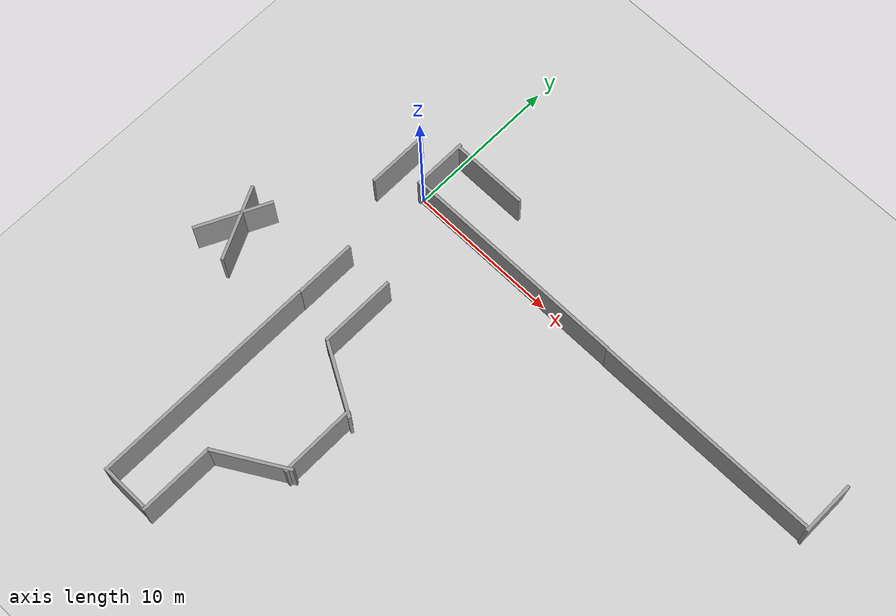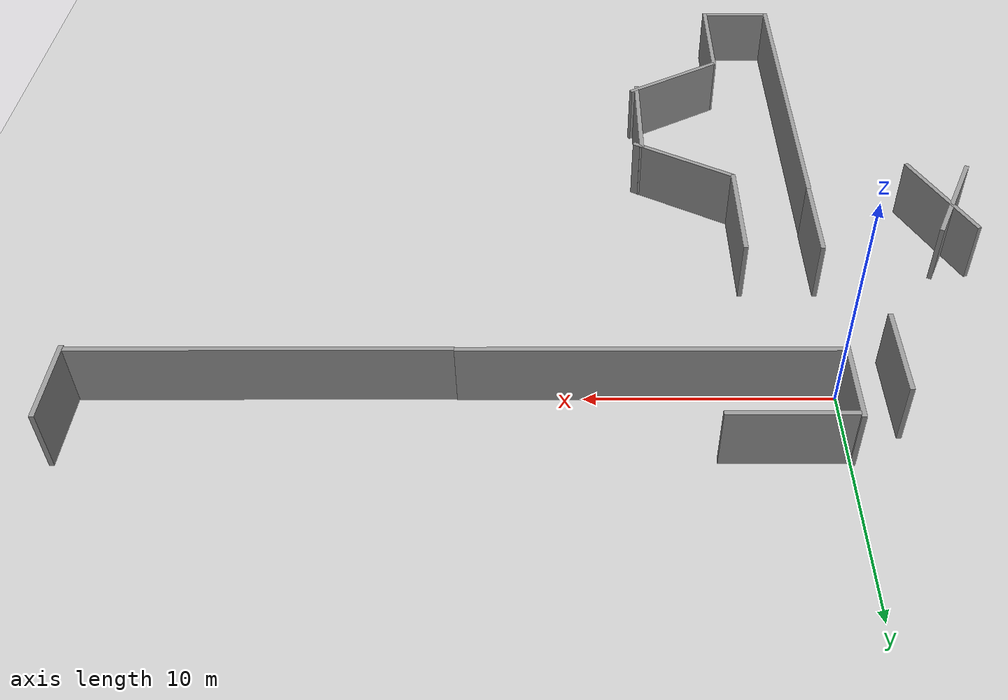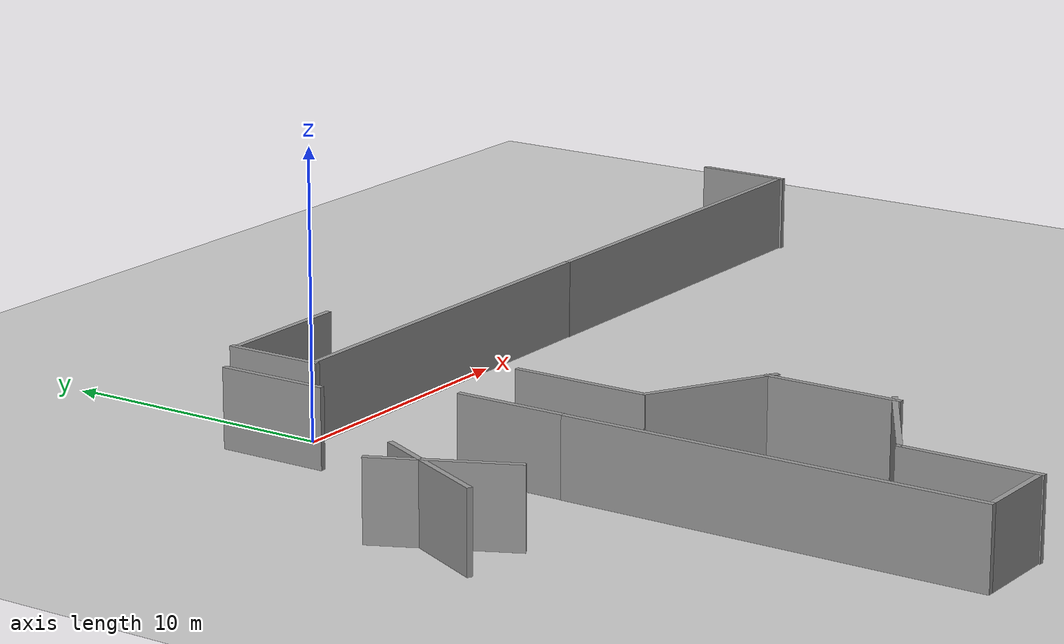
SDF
<sdf version="1.7">
 <world name="default">
  <model name="ground_plane">
   <static>1</static>
   <link name="link">
    <collision name="collision">
     <geometry><plane><normal>0 0 1</normal><size>100 100</size></plane></geometry>
     <surface>
      <contact><collide_bitmask>65535</collide_bitmask></contact>
      <friction><ode><mu>100</mu><mu2>50</mu2></ode></friction>
     </surface>
    </collision>
    <visual name="visual">
     <cast_shadows>0</cast_shadows>
     <geometry><plane><normal>0 0 1</normal><size>100 100</size></plane></geometry>
     <material>
      <script><uri>file://media/materials/scripts/gazebo.material</uri><name>Gazebo/Grey</name></script>
     </material>
    </visual>
   </link>
  </model>
  <model name="grey_wall_15_clone_0_clone">
   <link name="link">
    <pose>0 0 1.4 0 -0 0</pose>
    <inertial>
     <mass>1</mass>
     <inertia><ixx>1</ixx><ixy>0</ixy><ixz>0</ixz><iyy>1</iyy><iyz>0</iyz><izz>1</izz></inertia>
    </inertial>
    <visual name="visual">
     <cast_shadows>0</cast_shadows>
     <geometry><box><size>15 0.2 2.8</size></box></geometry>
     <material>
      <script>
       <uri>model://grey_wall/materials/scripts</uri>
       <uri>model://grey_wall/materials/textures</uri>
       <name>vrc/grey_wall</name>
      </script>
      <shader type="pixel"><normal_map>__default__</normal_map></shader>
      <ambient>1 1 1 1</ambient>
      <diffuse>1 1 1 1</diffuse>
      <specular>0 0 0 1</specular>
      <emissive>0 0 0 1</emissive>
     </material>
    </visual>
    <collision name="collision">
     <geometry><box><size>15 0.2 2.8</size></box></geometry>
     <surface>
      <friction>
       <ode><mu>1</mu><mu2>1</mu2><fdir1>0 0 0</fdir1><slip1>0</slip1><slip2>0</slip2></ode>
       <torsional>
        <coefficient>1</coefficient>
        <patch_radius>0</patch_radius>
        <surface_radius>0</surface_radius>
        <use_patch_radius>1</use_patch_radius>
        <ode><slip>0</slip></ode>
       </torsional>
      </friction>
      <bounce><restitution_coefficient>0</restitution_coefficient><threshold>1e+06</threshold></bounce>
      <contact>
       <collide_without_contact>0</collide_without_contact>
       <collide_without_contact_bitmask>1</collide_without_contact_bitmask>
       <collide_bitmask>1</collide_bitmask>
       <ode>
        <soft_cfm>0</soft_cfm>
        <soft_erp>0.2</soft_erp>
        <kp>1e+13</kp>
        <kd>1</kd>
        <max_vel>0.01</max_vel>
        <min_depth>0</min_depth>
       </ode>
       <bullet>
        <split_impulse>1</split_impulse>
        <split_impulse_penetration_threshold>-0.01</split_impulse_penetration_threshold>
        <soft_cfm>0</soft_cfm>
        <soft_erp>0.2</soft_erp>
        <kp>1e+13</kp>
        <kd>1</kd>
       </bullet>
      </contact>
     </surface>
    </collision>
   </link>
   <static>1</static>
   <pose>-0.125573 -17.4419 0 0 -0 1.57141</pose>
  </model>
  <model name="grey_wall_5_clone_0">
   <link name="link">
    <pose>0 0 1.4 0 -0 0</pose>
    <inertial>
     <mass>1</mass>
     <inertia><ixx>1</ixx><ixy>0</ixy><ixz>0</ixz><iyy>1</iyy><iyz>0</iyz><izz>1</izz></inertia>
    </inertial>
    <visual name="visual">
     <cast_shadows>0</cast_shadows>
     <geometry><box><size>5 0.2 2.8</size></box></geometry>
     <material>
      <script>
       <uri>model://grey_wall/materials/scripts</uri>
       <uri>model://grey_wall/materials/textures</uri>
       <name>vrc/grey_wall</name>
      </script>
      <shader type="pixel"><normal_map>__default__</normal_map></shader>
      <ambient>1 1 1 1</ambient>
      <diffuse>1 1 1 1</diffuse>
      <specular>0 0 0 1</specular>
      <emissive>0 0 0 1</emissive>
     </material>
    </visual>
    <collision name="collision">
     <geometry><box><size>5 0.2 2.8</size></box></geometry>
     <surface>
      <friction>
       <ode><mu>1</mu><mu2>1</mu2><fdir1>0 0 0</fdir1><slip1>0</slip1><slip2>0</slip2></ode>
       <torsional>
        <coefficient>1</coefficient>
        <patch_radius>0</patch_radius>
        <surface_radius>0</surface_radius>
        <use_patch_radius>1</use_patch_radius>
        <ode><slip>0</slip></ode>
       </torsional>
      </friction>
      <bounce><restitution_coefficient>0</restitution_coefficient><threshold>1e+06</threshold></bounce>
      <contact>
       <collide_without_contact>0</collide_without_contact>
       <collide_without_contact_bitmask>1</collide_without_contact_bitmask>
       <collide_bitmask>1</collide_bitmask>
       <ode>
        <soft_cfm>0</soft_cfm>
        <soft_erp>0.2</soft_erp>
        <kp>1e+13</kp>
        <kd>1</kd>
        <max_vel>0.01</max_vel>
        <min_depth>0</min_depth>
       </ode>
       <bullet>
        <split_impulse>1</split_impulse>
        <split_impulse_penetration_threshold>-0.01</split_impulse_penetration_threshold>
        <soft_cfm>0</soft_cfm>
        <soft_erp>0.2</soft_erp>
        <kp>1e+13</kp>
        <kd>1</kd>
       </bullet>
      </contact>
     </surface>
    </collision>
   </link>
   <static>1</static>
   <pose>5.22518 -18.851 0 0 -0 0.529284</pose>
  </model>
  <model name="grey_wall_5_clone_1">
   <link name="link">
    <pose>0 0 1.4 0 -0 0</pose>
    <inertial>
     <mass>1</mass>
     <inertia><ixx>1</ixx><ixy>0</ixy><ixz>0</ixz><iyy>1</iyy><iyz>0</iyz><izz>1</izz></inertia>
    </inertial>
    <visual name="visual">
     <cast_shadows>0</cast_shadows>
     <geometry><box><size>5 0.2 2.8</size></box></geometry>
     <material>
      <script>
       <uri>model://grey_wall/materials/scripts</uri>
       <uri>model://grey_wall/materials/textures</uri>
       <name>vrc/grey_wall</name>
      </script>
      <shader type="pixel"><normal_map>__default__</normal_map></shader>
      <ambient>1 1 1 1</ambient>
      <diffuse>1 1 1 1</diffuse>
      <specular>0 0 0 1</specular>
      <emissive>0 0 0 1</emissive>
     </material>
    </visual>
    <collision name="collision">
     <geometry><box><size>5 0.2 2.8</size></box></geometry>
     <surface>
      <friction>
       <ode><mu>1</mu><mu2>1</mu2><fdir1>0 0 0</fdir1><slip1>0</slip1><slip2>0</slip2></ode>
       <torsional>
        <coefficient>1</coefficient>
        <patch_radius>0</patch_radius>
        <surface_radius>0</surface_radius>
        <use_patch_radius>1</use_patch_radius>
        <ode><slip>0</slip></ode>
       </torsional>
      </friction>
      <bounce><restitution_coefficient>0</restitution_coefficient><threshold>1e+06</threshold></bounce>
      <contact>
       <collide_without_contact>0</collide_without_contact>
       <collide_without_contact_bitmask>1</collide_without_contact_bitmask>
       <collide_bitmask>1</collide_bitmask>
       <ode>
        <soft_cfm>0</soft_cfm>
        <soft_erp>0.2</soft_erp>
        <kp>1e+13</kp>
        <kd>1</kd>
        <max_vel>0.01</max_vel>
        <min_depth>0</min_depth>
       </ode>
       <bullet>
        <split_impulse>1</split_impulse>
        <split_impulse_penetration_threshold>-0.01</split_impulse_penetration_threshold>
        <soft_cfm>0</soft_cfm>
        <soft_erp>0.2</soft_erp>
        <kp>1e+13</kp>
        <kd>1</kd>
       </bullet>
      </contact>
     </surface>
    </collision>
   </link>
   <static>1</static>
   <pose>5.2624 -12.089 0 0 0 -0.50895</pose>
  </model>
  <model name="grey_wall_5_clone_clone_0_clone">
   <link name="link">
    <pose>0 0 1.4 0 -0 0</pose>
    <inertial>
     <mass>1</mass>
     <inertia><ixx>1</ixx><ixy>0</ixy><ixz>0</ixz><iyy>1</iyy><iyz>0</iyz><izz>1</izz></inertia>
    </inertial>
    <visual name="visual">
     <cast_shadows>0</cast_shadows>
     <geometry><box><size>5 0.2 2.8</size></box></geometry>
     <material>
      <script>
       <uri>model://grey_wall/materials/scripts</uri>
       <uri>model://grey_wall/materials/textures</uri>
       <name>vrc/grey_wall</name>
      </script>
      <shader type="pixel"><normal_map>__default__</normal_map></shader>
      <ambient>1 1 1 1</ambient>
      <diffuse>1 1 1 1</diffuse>
      <specular>0 0 0 1</specular>
      <emissive>0 0 0 1</emissive>
     </material>
    </visual>
    <collision name="collision">
     <geometry><box><size>5 0.2 2.8</size></box></geometry>
     <surface>
      <friction>
       <ode><mu>1</mu><mu2>1</mu2><fdir1>0 0 0</fdir1><slip1>0</slip1><slip2>0</slip2></ode>
       <torsional>
        <coefficient>1</coefficient>
        <patch_radius>0</patch_radius>
        <surface_radius>0</surface_radius>
        <use_patch_radius>1</use_patch_radius>
        <ode><slip>0</slip></ode>
       </torsional>
      </friction>
      <bounce><restitution_coefficient>0</restitution_coefficient><threshold>1e+06</threshold></bounce>
      <contact>
       <collide_without_contact>0</collide_without_contact>
       <collide_without_contact_bitmask>1</collide_without_contact_bitmask>
       <collide_bitmask>1</collide_bitmask>
       <ode>
        <soft_cfm>0</soft_cfm>
        <soft_erp>0.2</soft_erp>
        <kp>1e+13</kp>
        <kd>1</kd>
        <max_vel>0.01</max_vel>
        <min_depth>0</min_depth>
       </ode>
       <bullet>
        <split_impulse>1</split_impulse>
        <split_impulse_penetration_threshold>-0.01</split_impulse_penetration_threshold>
        <soft_cfm>0</soft_cfm>
        <soft_erp>0.2</soft_erp>
        <kp>1e+13</kp>
        <kd>1</kd>
       </bullet>
      </contact>
     </surface>
    </collision>
   </link>
   <static>1</static>
   <pose>3.0847 -22.4947 0 0 -0 1.57141</pose>
  </model>
  <model name="grey_wall_5_clone_clone_0_clone_0">
   <link name="link">
    <pose>0 0 1.4 0 -0 0</pose>
    <inertial>
     <mass>1</mass>
     <inertia><ixx>1</ixx><ixy>0</ixy><ixz>0</ixz><iyy>1</iyy><iyz>0</iyz><izz>1</izz></inertia>
    </inertial>
    <visual name="visual">
     <cast_shadows>0</cast_shadows>
     <geometry><box><size>5 0.2 2.8</size></box></geometry>
     <material>
      <script>
       <uri>model://grey_wall/materials/scripts</uri>
       <uri>model://grey_wall/materials/textures</uri>
       <name>vrc/grey_wall</name>
      </script>
      <shader type="pixel"><normal_map>__default__</normal_map></shader>
      <ambient>1 1 1 1</ambient>
      <diffuse>1 1 1 1</diffuse>
      <specular>0 0 0 1</specular>
      <emissive>0 0 0 1</emissive>
     </material>
    </visual>
    <collision name="collision">
     <geometry><box><size>5 0.2 2.8</size></box></geometry>
     <surface>
      <friction>
       <ode><mu>1</mu><mu2>1</mu2><fdir1>0 0 0</fdir1><slip1>0</slip1><slip2>0</slip2></ode>
       <torsional>
        <coefficient>1</coefficient>
        <patch_radius>0</patch_radius>
        <surface_radius>0</surface_radius>
        <use_patch_radius>1</use_patch_radius>
        <ode><slip>0</slip></ode>
       </torsional>
      </friction>
      <bounce><restitution_coefficient>0</restitution_coefficient><threshold>1e+06</threshold></bounce>
      <contact>
       <collide_without_contact>0</collide_without_contact>
       <collide_without_contact_bitmask>1</collide_without_contact_bitmask>
       <collide_bitmask>1</collide_bitmask>
       <ode>
        <soft_cfm>0</soft_cfm>
        <soft_erp>0.2</soft_erp>
        <kp>1e+13</kp>
        <kd>1</kd>
        <max_vel>0.01</max_vel>
        <min_depth>0</min_depth>
       </ode>
       <bullet>
        <split_impulse>1</split_impulse>
        <split_impulse_penetration_threshold>-0.01</split_impulse_penetration_threshold>
        <soft_cfm>0</soft_cfm>
        <soft_erp>0.2</soft_erp>
        <kp>1e+13</kp>
        <kd>1</kd>
       </bullet>
      </contact>
     </surface>
    </collision>
   </link>
   <static>1</static>
   <pose>7.0941 -15.5005 0 0 -0 1.57141</pose>
  </model>
  <model name="grey_wall_5_clone_clone_0_clone_1">
   <link name="link">
    <pose>0 0 1.4 0 -0 0</pose>
    <inertial>
     <mass>1</mass>
     <inertia><ixx>1</ixx><ixy>0</ixy><ixz>0</ixz><iyy>1</iyy><iyz>0</iyz><izz>1</izz></inertia>
    </inertial>
    <visual name="visual">
     <cast_shadows>0</cast_shadows>
     <geometry><box><size>5 0.2 2.8</size></box></geometry>
     <material>
      <script>
       <uri>model://grey_wall/materials/scripts</uri>
       <uri>model://grey_wall/materials/textures</uri>
       <name>vrc/grey_wall</name>
      </script>
      <shader type="pixel"><normal_map>__default__</normal_map></shader>
      <ambient>1 1 1 1</ambient>
      <diffuse>1 1 1 1</diffuse>
      <specular>0 0 0 1</specular>
      <emissive>0 0 0 1</emissive>
     </material>
    </visual>
    <collision name="collision">
     <geometry><box><size>5 0.2 2.8</size></box></geometry>
     <surface>
      <friction>
       <ode><mu>1</mu><mu2>1</mu2><fdir1>0 0 0</fdir1><slip1>0</slip1><slip2>0</slip2></ode>
       <torsional>
        <coefficient>1</coefficient>
        <patch_radius>0</patch_radius>
        <surface_radius>0</surface_radius>
        <use_patch_radius>1</use_patch_radius>
        <ode><slip>0</slip></ode>
       </torsional>
      </friction>
      <bounce><restitution_coefficient>0</restitution_coefficient><threshold>1e+06</threshold></bounce>
      <contact>
       <collide_without_contact>0</collide_without_contact>
       <collide_without_contact_bitmask>1</collide_without_contact_bitmask>
       <collide_bitmask>1</collide_bitmask>
       <ode>
        <soft_cfm>0</soft_cfm>
        <soft_erp>0.2</soft_erp>
        <kp>1e+13</kp>
        <kd>1</kd>
        <max_vel>0.01</max_vel>
        <min_depth>0</min_depth>
       </ode>
       <bullet>
        <split_impulse>1</split_impulse>
        <split_impulse_penetration_threshold>-0.01</split_impulse_penetration_threshold>
        <soft_cfm>0</soft_cfm>
        <soft_erp>0.2</soft_erp>
        <kp>1e+13</kp>
        <kd>1</kd>
       </bullet>
      </contact>
     </surface>
    </collision>
   </link>
   <static>1</static>
   <pose>3.11887 -8.47787 0 0 -0 1.57141</pose>
  </model>
  <model name="grey_wall_5_clone_clone_0_clone_1_clone">
   <link name="link">
    <pose>0 0 1.4 0 -0 0</pose>
    <inertial>
     <mass>1</mass>
     <inertia><ixx>1</ixx><ixy>0</ixy><ixz>0</ixz><iyy>1</iyy><iyz>0</iyz><izz>1</izz></inertia>
    </inertial>
    <visual name="visual">
     <cast_shadows>0</cast_shadows>
     <geometry><box><size>5 0.2 2.8</size></box></geometry>
     <material>
      <script>
       <uri>model://grey_wall/materials/scripts</uri>
       <uri>model://grey_wall/materials/textures</uri>
       <name>vrc/grey_wall</name>
      </script>
      <shader type="pixel"><normal_map>__default__</normal_map></shader>
      <ambient>1 1 1 1</ambient>
      <diffuse>1 1 1 1</diffuse>
      <specular>0 0 0 1</specular>
      <emissive>0 0 0 1</emissive>
     </material>
    </visual>
    <collision name="collision">
     <geometry><box><size>5 0.2 2.8</size></box></geometry>
     <surface>
      <friction>
       <ode><mu>1</mu><mu2>1</mu2><fdir1>0 0 0</fdir1><slip1>0</slip1><slip2>0</slip2></ode>
       <torsional>
        <coefficient>1</coefficient>
        <patch_radius>0</patch_radius>
        <surface_radius>0</surface_radius>
        <use_patch_radius>1</use_patch_radius>
        <ode><slip>0</slip></ode>
       </torsional>
      </friction>
      <bounce><restitution_coefficient>0</restitution_coefficient><threshold>1e+06</threshold></bounce>
      <contact>
       <collide_without_contact>0</collide_without_contact>
       <collide_without_contact_bitmask>1</collide_without_contact_bitmask>
       <collide_bitmask>1</collide_bitmask>
       <ode>
        <soft_cfm>0</soft_cfm>
        <soft_erp>0.2</soft_erp>
        <kp>1e+13</kp>
        <kd>1</kd>
        <max_vel>0.01</max_vel>
        <min_depth>0</min_depth>
       </ode>
       <bullet>
        <split_impulse>1</split_impulse>
        <split_impulse_penetration_threshold>-0.01</split_impulse_penetration_threshold>
        <soft_cfm>0</soft_cfm>
        <soft_erp>0.2</soft_erp>
        <kp>1e+13</kp>
        <kd>1</kd>
       </bullet>
      </contact>
     </surface>
    </collision>
   </link>
   <static>1</static>
   <pose>-6.45443 -9.34821 0 0 -0 1.11893</pose>
  </model>
  <model name="grey_wall_5_clone_clone_0_clone_1_clone_clone">
   <link name="link">
    <pose>0 0 1.4 0 -0 0</pose>
    <inertial>
     <mass>1</mass>
     <inertia><ixx>1</ixx><ixy>0</ixy><ixz>0</ixz><iyy>1</iyy><iyz>0</iyz><izz>1</izz></inertia>
    </inertial>
    <visual name="visual">
     <cast_shadows>0</cast_shadows>
     <geometry><box><size>5 0.2 2.8</size></box></geometry>
     <material>
      <script>
       <uri>model://grey_wall/materials/scripts</uri>
       <uri>model://grey_wall/materials/textures</uri>
       <name>vrc/grey_wall</name>
      </script>
      <shader type="pixel"><normal_map>__default__</normal_map></shader>
      <ambient>1 1 1 1</ambient>
      <diffuse>1 1 1 1</diffuse>
      <specular>0 0 0 1</specular>
      <emissive>0 0 0 1</emissive>
     </material>
    </visual>
    <collision name="collision">
     <geometry><box><size>5 0.2 2.8</size></box></geometry>
     <surface>
      <friction>
       <ode><mu>1</mu><mu2>1</mu2><fdir1>0 0 0</fdir1><slip1>0</slip1><slip2>0</slip2></ode>
       <torsional>
        <coefficient>1</coefficient>
        <patch_radius>0</patch_radius>
        <surface_radius>0</surface_radius>
        <use_patch_radius>1</use_patch_radius>
        <ode><slip>0</slip></ode>
       </torsional>
      </friction>
      <bounce><restitution_coefficient>0</restitution_coefficient><threshold>1e+06</threshold></bounce>
      <contact>
       <collide_without_contact>0</collide_without_contact>
       <collide_without_contact_bitmask>1</collide_without_contact_bitmask>
       <collide_bitmask>1</collide_bitmask>
       <ode>
        <soft_cfm>0</soft_cfm>
        <soft_erp>0.2</soft_erp>
        <kp>1e+13</kp>
        <kd>1</kd>
        <max_vel>0.01</max_vel>
        <min_depth>0</min_depth>
       </ode>
       <bullet>
        <split_impulse>1</split_impulse>
        <split_impulse_penetration_threshold>-0.01</split_impulse_penetration_threshold>
        <soft_cfm>0</soft_cfm>
        <soft_erp>0.2</soft_erp>
        <kp>1e+13</kp>
        <kd>1</kd>
       </bullet>
      </contact>
     </surface>
    </collision>
   </link>
   <static>1</static>
   <pose>-5.9078 -9.50249 0 0 -0 2.02194</pose>
  </model>
  <model name="grey_wall_4_clone_0_clone_clone_0_clone_clone_clone_1_clone">
   <link name="link">
    <pose>0 0 1.4 0 -0 0</pose>
    <inertial>
     <mass>1</mass>
     <inertia><ixx>1</ixx><ixy>0</ixy><ixz>0</ixz><iyy>1</iyy><iyz>0</iyz><izz>1</izz></inertia>
    </inertial>
    <visual name="visual">
     <cast_shadows>0</cast_shadows>
     <geometry><box><size>4 0.2 2.8</size></box></geometry>
     <material>
      <script>
       <uri>model://grey_wall/materials/scripts</uri>
       <uri>model://grey_wall/materials/textures</uri>
       <name>vrc/grey_wall</name>
      </script>
      <shader type="pixel"><normal_map>__default__</normal_map></shader>
      <ambient>1 1 1 1</ambient>
      <diffuse>1 1 1 1</diffuse>
      <specular>0 0 0 1</specular>
      <emissive>0 0 0 1</emissive>
     </material>
    </visual>
    <collision name="collision">
     <geometry><box><size>4 0.2 2.8</size></box></geometry>
     <surface>
      <friction>
       <ode><mu>1</mu><mu2>1</mu2><fdir1>0 0 0</fdir1><slip1>0</slip1><slip2>0</slip2></ode>
       <torsional>
        <coefficient>1</coefficient>
        <patch_radius>0</patch_radius>
        <surface_radius>0</surface_radius>
        <use_patch_radius>1</use_patch_radius>
        <ode><slip>0</slip></ode>
       </torsional>
      </friction>
      <bounce><restitution_coefficient>0</restitution_coefficient><threshold>1e+06</threshold></bounce>
      <contact>
       <collide_without_contact>0</collide_without_contact>
       <collide_without_contact_bitmask>1</collide_without_contact_bitmask>
       <collide_bitmask>1</collide_bitmask>
       <ode>
        <soft_cfm>0</soft_cfm>
        <soft_erp>0.2</soft_erp>
        <kp>1e+13</kp>
        <kd>1</kd>
        <max_vel>0.01</max_vel>
        <min_depth>0</min_depth>
       </ode>
       <bullet>
        <split_impulse>1</split_impulse>
        <split_impulse_penetration_threshold>-0.01</split_impulse_penetration_threshold>
        <soft_cfm>0</soft_cfm>
        <soft_erp>0.2</soft_erp>
        <kp>1e+13</kp>
        <kd>1</kd>
       </bullet>
      </contact>
     </surface>
    </collision>
   </link>
   <static>1</static>
   <pose>-0.11243 -7.95236 0 0 -0 1.57141</pose>
  </model>
  <model name="grey_wall_4_clone_0_clone_clone_0_clone_clone_clone_0_clone">
   <link name="link">
    <pose>0 0 1.4 0 -0 0</pose>
    <inertial>
     <mass>1</mass>
     <inertia><ixx>1</ixx><ixy>0</ixy><ixz>0</ixz><iyy>1</iyy><iyz>0</iyz><izz>1</izz></inertia>
    </inertial>
    <visual name="visual">
     <cast_shadows>0</cast_shadows>
     <geometry><box><size>4 0.2 2.8</size></box></geometry>
     <material>
      <script>
       <uri>model://grey_wall/materials/scripts</uri>
       <uri>model://grey_wall/materials/textures</uri>
       <name>vrc/grey_wall</name>
      </script>
      <shader type="pixel"><normal_map>__default__</normal_map></shader>
      <ambient>1 1 1 1</ambient>
      <diffuse>1 1 1 1</diffuse>
      <specular>0 0 0 1</specular>
      <emissive>0 0 0 1</emissive>
     </material>
    </visual>
    <collision name="collision">
     <geometry><box><size>4 0.2 2.8</size></box></geometry>
     <surface>
      <friction>
       <ode><mu>1</mu><mu2>1</mu2><fdir1>0 0 0</fdir1><slip1>0</slip1><slip2>0</slip2></ode>
       <torsional>
        <coefficient>1</coefficient>
        <patch_radius>0</patch_radius>
        <surface_radius>0</surface_radius>
        <use_patch_radius>1</use_patch_radius>
        <ode><slip>0</slip></ode>
       </torsional>
      </friction>
      <bounce><restitution_coefficient>0</restitution_coefficient><threshold>1e+06</threshold></bounce>
      <contact>
       <collide_without_contact>0</collide_without_contact>
       <collide_without_contact_bitmask>1</collide_without_contact_bitmask>
       <collide_bitmask>1</collide_bitmask>
       <ode>
        <soft_cfm>0</soft_cfm>
        <soft_erp>0.2</soft_erp>
        <kp>1e+13</kp>
        <kd>1</kd>
        <max_vel>0.01</max_vel>
        <min_depth>0</min_depth>
       </ode>
       <bullet>
        <split_impulse>1</split_impulse>
        <split_impulse_penetration_threshold>-0.01</split_impulse_penetration_threshold>
        <soft_cfm>0</soft_cfm>
        <soft_erp>0.2</soft_erp>
        <kp>1e+13</kp>
        <kd>1</kd>
       </bullet>
      </contact>
     </surface>
    </collision>
   </link>
   <static>1</static>
   <pose>-2.10783 -0.018559 0 0 -0 1.57141</pose>
  </model>
  <model name="grey_wall_3_clone_clone_clone">
   <link name="link">
    <pose>0 0 1.4 0 -0 0</pose>
    <inertial>
     <mass>1</mass>
     <inertia><ixx>1</ixx><ixy>0</ixy><ixz>0</ixz><iyy>1</iyy><iyz>0</iyz><izz>1</izz></inertia>
    </inertial>
    <visual name="visual">
     <cast_shadows>0</cast_shadows>
     <geometry><box><size>3 0.2 2.8</size></box></geometry>
     <material>
      <script>
       <uri>model://grey_wall/materials/scripts</uri>
       <uri>model://grey_wall/materials/textures</uri>
       <name>vrc/grey_wall</name>
      </script>
      <shader type="pixel"><normal_map>__default__</normal_map></shader>
      <ambient>1 1 1 1</ambient>
      <diffuse>1 1 1 1</diffuse>
      <specular>0 0 0 1</specular>
      <emissive>0 0 0 1</emissive>
     </material>
    </visual>
    <collision name="collision">
     <geometry><box><size>2.96 0.2 2.8</size></box></geometry>
     <surface>
      <friction>
       <ode><mu>1</mu><mu2>1</mu2><fdir1>0 0 0</fdir1><slip1>0</slip1><slip2>0</slip2></ode>
       <torsional>
        <coefficient>1</coefficient>
        <patch_radius>0</patch_radius>
        <surface_radius>0</surface_radius>
        <use_patch_radius>1</use_patch_radius>
        <ode><slip>0</slip></ode>
       </torsional>
      </friction>
      <bounce><restitution_coefficient>0</restitution_coefficient><threshold>1e+06</threshold></bounce>
      <contact>
       <collide_without_contact>0</collide_without_contact>
       <collide_without_contact_bitmask>1</collide_without_contact_bitmask>
       <collide_bitmask>1</collide_bitmask>
       <ode>
        <soft_cfm>0</soft_cfm>
        <soft_erp>0.2</soft_erp>
        <kp>1e+13</kp>
        <kd>1</kd>
        <max_vel>0.01</max_vel>
        <min_depth>0</min_depth>
       </ode>
       <bullet>
        <split_impulse>1</split_impulse>
        <split_impulse_penetration_threshold>-0.01</split_impulse_penetration_threshold>
        <soft_cfm>0</soft_cfm>
        <soft_erp>0.2</soft_erp>
        <kp>1e+13</kp>
        <kd>1</kd>
       </bullet>
      </contact>
     </surface>
    </collision>
   </link>
   <static>1</static>
   <pose>1.48162 -24.8436 0 0 -0 0</pose>
  </model>
  <model name="grey_wall_15_clone_0_clone_clone_clone">
   <link name="link">
    <pose>0 0 1.4 0 -0 0</pose>
    <inertial>
     <mass>1</mass>
     <inertia><ixx>1</ixx><ixy>0</ixy><ixz>0</ixz><iyy>1</iyy><iyz>0</iyz><izz>1</izz></inertia>
    </inertial>
    <visual name="visual">
     <cast_shadows>0</cast_shadows>
     <geometry><box><size>15 0.2 2.8</size></box></geometry>
     <material>
      <script>
       <uri>model://grey_wall/materials/scripts</uri>
       <uri>model://grey_wall/materials/textures</uri>
       <name>vrc/grey_wall</name>
      </script>
      <shader type="pixel"><normal_map>__default__</normal_map></shader>
      <ambient>1 1 1 1</ambient>
      <diffuse>1 1 1 1</diffuse>
      <specular>0 0 0 1</specular>
      <emissive>0 0 0 1</emissive>
     </material>
    </visual>
    <collision name="collision">
     <geometry><box><size>15 0.2 2.8</size></box></geometry>
     <surface>
      <friction>
       <ode><mu>1</mu><mu2>1</mu2><fdir1>0 0 0</fdir1><slip1>0</slip1><slip2>0</slip2></ode>
       <torsional>
        <coefficient>1</coefficient>
        <patch_radius>0</patch_radius>
        <surface_radius>0</surface_radius>
        <use_patch_radius>1</use_patch_radius>
        <ode><slip>0</slip></ode>
       </torsional>
      </friction>
      <bounce><restitution_coefficient>0</restitution_coefficient><threshold>1e+06</threshold></bounce>
      <contact>
       <collide_without_contact>0</collide_without_contact>
       <collide_without_contact_bitmask>1</collide_without_contact_bitmask>
       <collide_bitmask>1</collide_bitmask>
       <ode>
        <soft_cfm>0</soft_cfm>
        <soft_erp>0.2</soft_erp>
        <kp>1e+13</kp>
        <kd>1</kd>
        <max_vel>0.01</max_vel>
        <min_depth>0</min_depth>
       </ode>
       <bullet>
        <split_impulse>1</split_impulse>
        <split_impulse_penetration_threshold>-0.01</split_impulse_penetration_threshold>
        <soft_cfm>0</soft_cfm>
        <soft_erp>0.2</soft_erp>
        <kp>1e+13</kp>
        <kd>1</kd>
       </bullet>
      </contact>
     </surface>
    </collision>
   </link>
   <static>1</static>
   <pose>7.49836 -0.095524 0 0 -0 0.001488</pose>
  </model>
  <model name="grey_wall_15_clone_0_clone_clone_clone_0">
   <link name="link">
    <pose>0 0 1.4 0 -0 0</pose>
    <inertial>
     <mass>1</mass>
     <inertia><ixx>1</ixx><ixy>0</ixy><ixz>0</ixz><iyy>1</iyy><iyz>0</iyz><izz>1</izz></inertia>
    </inertial>
    <visual name="visual">
     <cast_shadows>0</cast_shadows>
     <geometry><box><size>15 0.2 2.8</size></box></geometry>
     <material>
      <script>
       <uri>model://grey_wall/materials/scripts</uri>
       <uri>model://grey_wall/materials/textures</uri>
       <name>vrc/grey_wall</name>
      </script>
      <shader type="pixel"><normal_map>__default__</normal_map></shader>
      <ambient>1 1 1 1</ambient>
      <diffuse>1 1 1 1</diffuse>
      <specular>0 0 0 1</specular>
      <emissive>0 0 0 1</emissive>
     </material>
    </visual>
    <collision name="collision">
     <geometry><box><size>15 0.2 2.8</size></box></geometry>
     <surface>
      <friction>
       <ode><mu>1</mu><mu2>1</mu2><fdir1>0 0 0</fdir1><slip1>0</slip1><slip2>0</slip2></ode>
       <torsional>
        <coefficient>1</coefficient>
        <patch_radius>0</patch_radius>
        <surface_radius>0</surface_radius>
        <use_patch_radius>1</use_patch_radius>
        <ode><slip>0</slip></ode>
       </torsional>
      </friction>
      <bounce><restitution_coefficient>0</restitution_coefficient><threshold>1e+06</threshold></bounce>
      <contact>
       <collide_without_contact>0</collide_without_contact>
       <collide_without_contact_bitmask>1</collide_without_contact_bitmask>
       <collide_bitmask>1</collide_bitmask>
       <ode>
        <soft_cfm>0</soft_cfm>
        <soft_erp>0.2</soft_erp>
        <kp>1e+13</kp>
        <kd>1</kd>
        <max_vel>0.01</max_vel>
        <min_depth>0</min_depth>
       </ode>
       <bullet>
        <split_impulse>1</split_impulse>
        <split_impulse_penetration_threshold>-0.01</split_impulse_penetration_threshold>
        <soft_cfm>0</soft_cfm>
        <soft_erp>0.2</soft_erp>
        <kp>1e+13</kp>
        <kd>1</kd>
       </bullet>
      </contact>
     </surface>
    </collision>
   </link>
   <static>1</static>
   <pose>22.4874 -0.099405 0 0 -0 0.001488</pose>
  </model>
  <model name="grey_wall_3.6_clone_0">
   <link name="link">
    <pose>0 0 1.4 0 -0 0</pose>
    <inertial>
     <mass>1</mass>
     <inertia><ixx>1</ixx><ixy>0</ixy><ixz>0</ixz><iyy>1</iyy><iyz>0</iyz><izz>1</izz></inertia>
    </inertial>
    <visual name="visual">
     <cast_shadows>0</cast_shadows>
     <geometry><box><size>3.6 0.2 2.8</size></box></geometry>
     <material>
      <script>
       <uri>model://grey_wall/materials/scripts</uri>
       <uri>model://grey_wall/materials/textures</uri>
       <name>vrc/grey_wall</name>
      </script>
      <shader type="pixel"><normal_map>__default__</normal_map></shader>
      <ambient>1 1 1 1</ambient>
      <diffuse>1 1 1 1</diffuse>
      <specular>0 0 0 1</specular>
      <emissive>0 0 0 1</emissive>
     </material>
    </visual>
    <collision name="collision">
     <geometry><box><size>3.6 0.2 2.8</size></box></geometry>
     <surface>
      <friction>
       <ode><mu>1</mu><mu2>1</mu2><fdir1>0 0 0</fdir1><slip1>0</slip1><slip2>0</slip2></ode>
       <torsional>
        <coefficient>1</coefficient>
        <patch_radius>0</patch_radius>
        <surface_radius>0</surface_radius>
        <use_patch_radius>1</use_patch_radius>
        <ode><slip>0</slip></ode>
       </torsional>
      </friction>
      <bounce><restitution_coefficient>0</restitution_coefficient><threshold>1e+06</threshold></bounce>
      <contact>
       <collide_without_contact>0</collide_without_contact>
       <collide_without_contact_bitmask>1</collide_without_contact_bitmask>
       <collide_bitmask>1</collide_bitmask>
       <ode>
        <soft_cfm>0</soft_cfm>
        <soft_erp>0.2</soft_erp>
        <kp>1e+13</kp>
        <kd>1</kd>
        <max_vel>0.01</max_vel>
        <min_depth>0</min_depth>
       </ode>
       <bullet>
        <split_impulse>1</split_impulse>
        <split_impulse_penetration_threshold>-0.01</split_impulse_penetration_threshold>
        <soft_cfm>0</soft_cfm>
        <soft_erp>0.2</soft_erp>
        <kp>1e+13</kp>
        <kd>1</kd>
       </bullet>
      </contact>
     </surface>
    </collision>
   </link>
   <static>1</static>
   <pose>-0.087094 1.50795 0 0 0 -1.57333</pose>
  </model>
  <model name="grey_wall_5_clone_2">
   <link name="link">
    <pose>0 0 1.4 0 -0 0</pose>
    <inertial>
     <mass>1</mass>
     <inertia><ixx>1</ixx><ixy>0</ixy><ixz>0</ixz><iyy>1</iyy><iyz>0</iyz><izz>1</izz></inertia>
    </inertial>
    <visual name="visual">
     <cast_shadows>0</cast_shadows>
     <geometry><box><size>5 0.2 2.8</size></box></geometry>
     <material>
      <script>
       <uri>model://grey_wall/materials/scripts</uri>
       <uri>model://grey_wall/materials/textures</uri>
       <name>vrc/grey_wall</name>
      </script>
      <shader type="pixel"><normal_map>__default__</normal_map></shader>
      <ambient>1 1 1 1</ambient>
      <diffuse>1 1 1 1</diffuse>
      <specular>0 0 0 1</specular>
      <emissive>0 0 0 1</emissive>
     </material>
    </visual>
    <collision name="collision">
     <geometry><box><size>5 0.2 2.8</size></box></geometry>
     <surface>
      <friction>
       <ode><mu>1</mu><mu2>1</mu2><fdir1>0 0 0</fdir1><slip1>0</slip1><slip2>0</slip2></ode>
       <torsional>
        <coefficient>1</coefficient>
        <patch_radius>0</patch_radius>
        <surface_radius>0</surface_radius>
        <use_patch_radius>1</use_patch_radius>
        <ode><slip>0</slip></ode>
       </torsional>
      </friction>
      <bounce><restitution_coefficient>0</restitution_coefficient><threshold>1e+06</threshold></bounce>
      <contact>
       <collide_without_contact>0</collide_without_contact>
       <collide_without_contact_bitmask>1</collide_without_contact_bitmask>
       <collide_bitmask>1</collide_bitmask>
       <ode>
        <soft_cfm>0</soft_cfm>
        <soft_erp>0.2</soft_erp>
        <kp>1e+13</kp>
        <kd>1</kd>
        <max_vel>0.01</max_vel>
        <min_depth>0</min_depth>
       </ode>
       <bullet>
        <split_impulse>1</split_impulse>
        <split_impulse_penetration_threshold>-0.01</split_impulse_penetration_threshold>
        <soft_cfm>0</soft_cfm>
        <soft_erp>0.2</soft_erp>
        <kp>1e+13</kp>
        <kd>1</kd>
       </bullet>
      </contact>
     </surface>
    </collision>
   </link>
   <static>1</static>
   <pose>2.49606 3.10264 0 0 0 -0.000612</pose>
  </model>
  <model name="grey_wall_3.6_clone_0_clone">
   <link name="link">
    <pose>0 0 1.4 0 -0 0</pose>
    <inertial>
     <mass>1</mass>
     <inertia><ixx>1</ixx><ixy>0</ixy><ixz>0</ixz><iyy>1</iyy><iyz>0</iyz><izz>1</izz></inertia>
    </inertial>
    <visual name="visual">
     <cast_shadows>0</cast_shadows>
     <geometry><box><size>3.6 0.2 2.8</size></box></geometry>
     <material>
      <script>
       <uri>model://grey_wall/materials/scripts</uri>
       <uri>model://grey_wall/materials/textures</uri>
       <name>vrc/grey_wall</name>
      </script>
      <shader type="pixel"><normal_map>__default__</normal_map></shader>
      <ambient>1 1 1 1</ambient>
      <diffuse>1 1 1 1</diffuse>
      <specular>0 0 0 1</specular>
      <emissive>0 0 0 1</emissive>
     </material>
    </visual>
    <collision name="collision">
     <geometry><box><size>3.6 0.2 2.8</size></box></geometry>
     <surface>
      <friction>
       <ode><mu>1</mu><mu2>1</mu2><fdir1>0 0 0</fdir1><slip1>0</slip1><slip2>0</slip2></ode>
       <torsional>
        <coefficient>1</coefficient>
        <patch_radius>0</patch_radius>
        <surface_radius>0</surface_radius>
        <use_patch_radius>1</use_patch_radius>
        <ode><slip>0</slip></ode>
       </torsional>
      </friction>
      <bounce><restitution_coefficient>0</restitution_coefficient><threshold>1e+06</threshold></bounce>
      <contact>
       <collide_without_contact>0</collide_without_contact>
       <collide_without_contact_bitmask>1</collide_without_contact_bitmask>
       <collide_bitmask>1</collide_bitmask>
       <ode>
        <soft_cfm>0</soft_cfm>
        <soft_erp>0.2</soft_erp>
        <kp>1e+13</kp>
        <kd>1</kd>
        <max_vel>0.01</max_vel>
        <min_depth>0</min_depth>
       </ode>
       <bullet>
        <split_impulse>1</split_impulse>
        <split_impulse_penetration_threshold>-0.01</split_impulse_penetration_threshold>
        <soft_cfm>0</soft_cfm>
        <soft_erp>0.2</soft_erp>
        <kp>1e+13</kp>
        <kd>1</kd>
       </bullet>
      </contact>
     </surface>
    </collision>
   </link>
   <static>1</static>
   <pose>30.0991 1.51733 0 0 0 -1.57333</pose>
  </model>
 </world>
</sdf>
